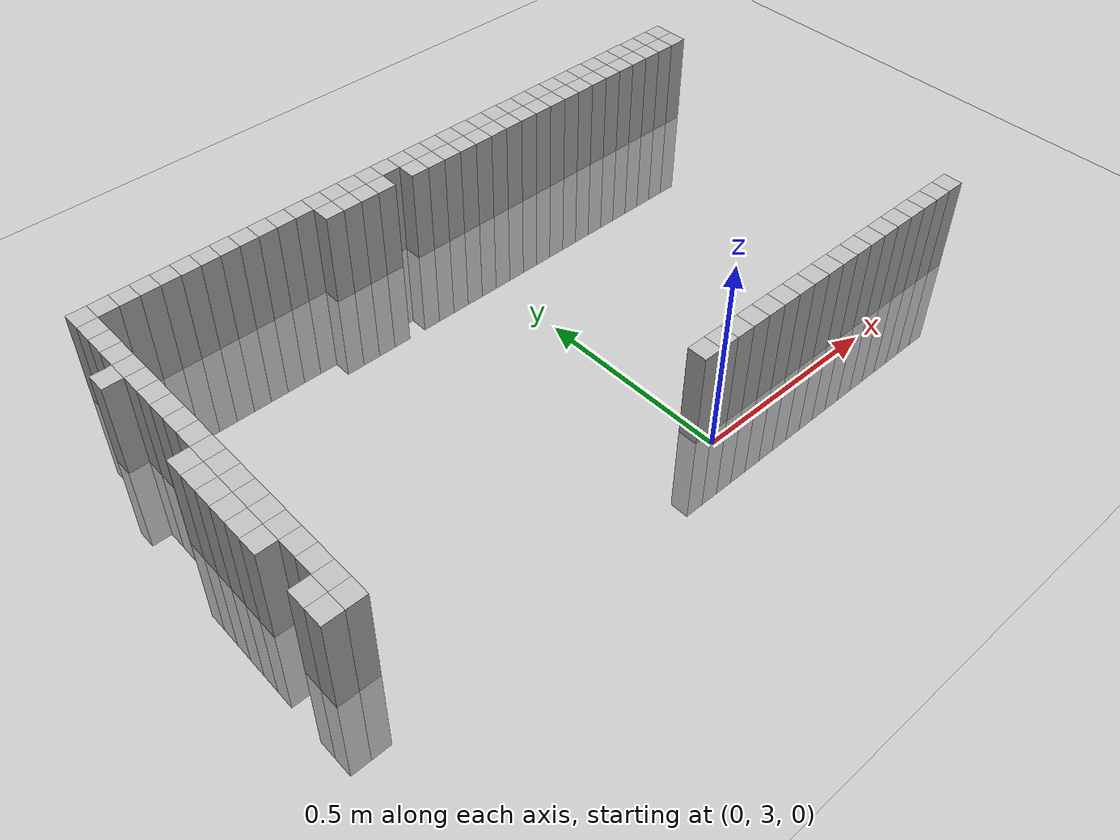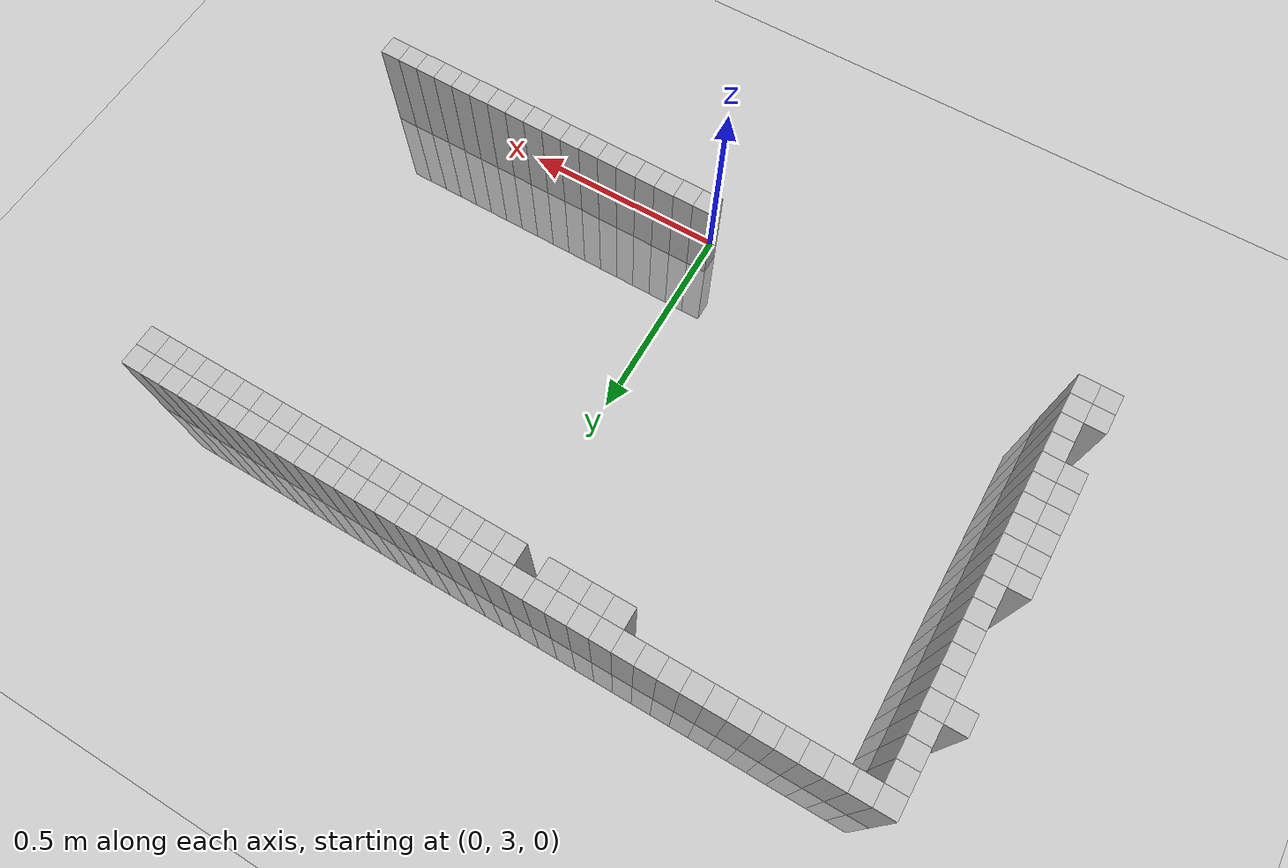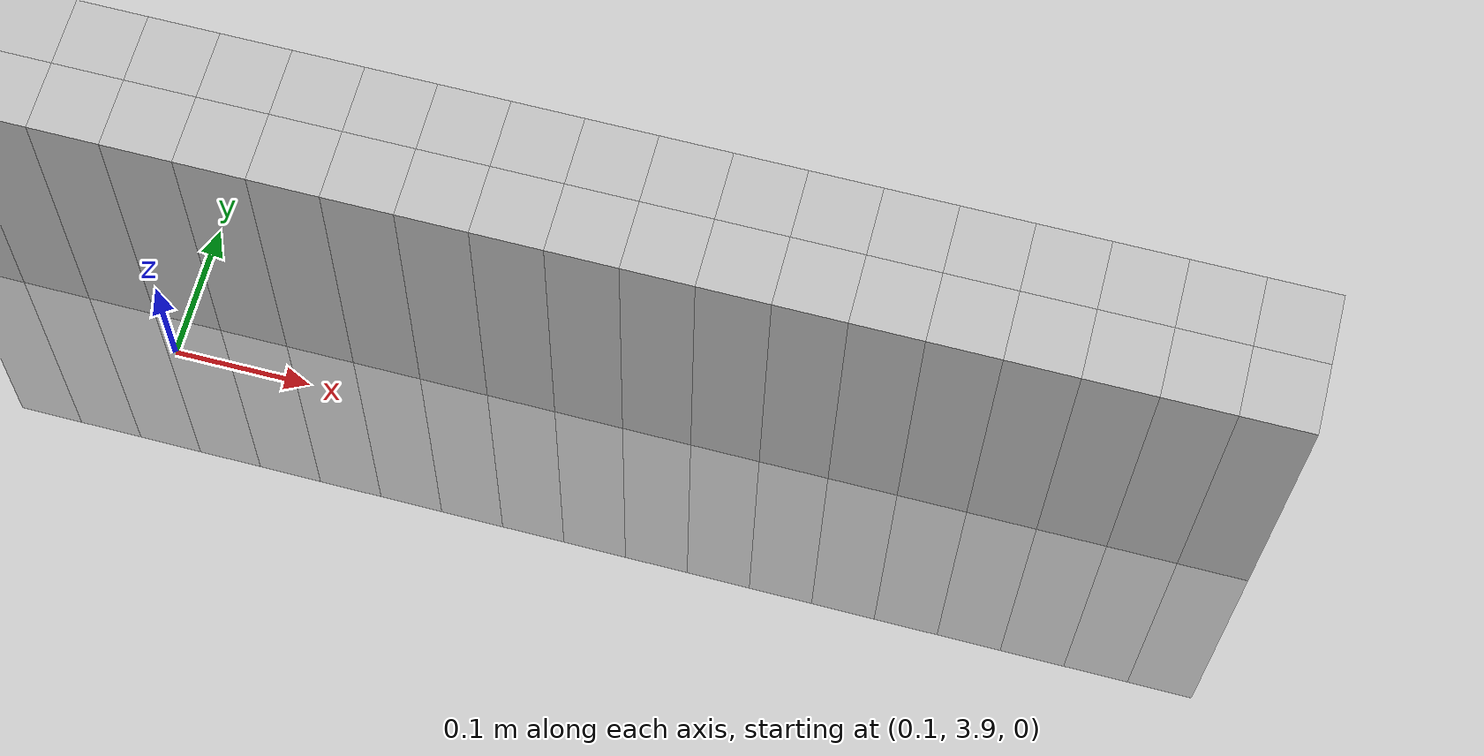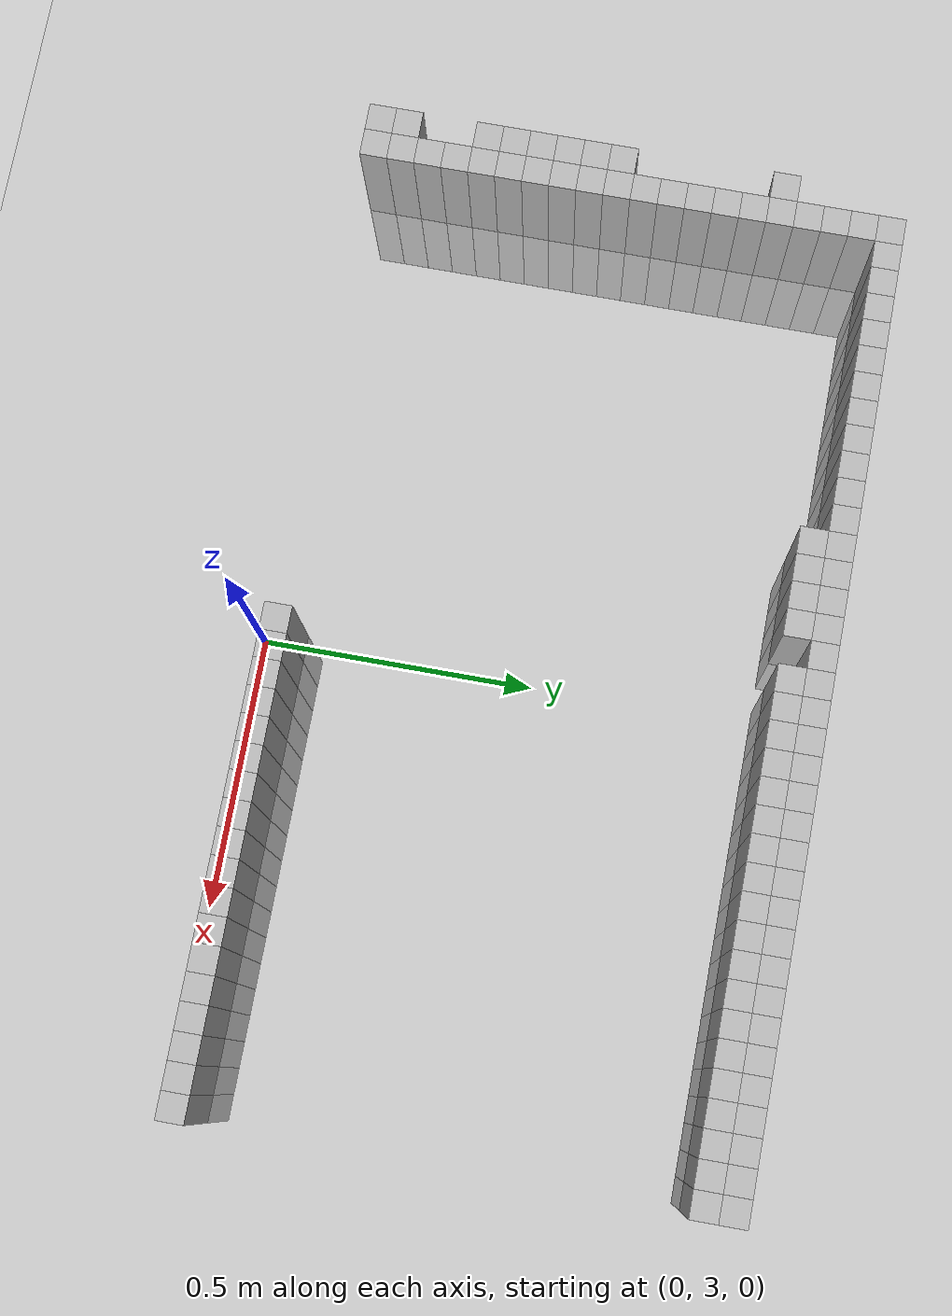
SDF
<sdf version="1.6">
 <world name="my_exploration_world">
  <include><uri>model://ground_plane</uri></include>
  <include><uri>model://sun</uri></include>
  <model name="obstacle_548">
   <pose>-0.9499998651444912 3.0500001944601536 0 0 0 0</pose>
   <link name="link">
    <collision name="collision">
     <geometry><box><size>0.05000000074505806 0.05000000074505806 0.5</size></box></geometry>
    </collision>
    <visual name="visual">
     <geometry><box><size>0.05000000074505806 0.05000000074505806 0.5</size></box></geometry>
    </visual>
   </link>
   <static>true</static>
  </model>
  <model name="obstacle_549">
   <pose>-0.8999998643994331 3.0500001944601536 0 0 0 0</pose>
   <link name="link">
    <collision name="collision">
     <geometry><box><size>0.05000000074505806 0.05000000074505806 0.5</size></box></geometry>
    </collision>
    <visual name="visual">
     <geometry><box><size>0.05000000074505806 0.05000000074505806 0.5</size></box></geometry>
    </visual>
   </link>
   <static>true</static>
  </model>
  <model name="obstacle_550">
   <pose>1.4901161193847656e-07 3.0500001944601536 0 0 0 0</pose>
   <link name="link">
    <collision name="collision">
     <geometry><box><size>0.05000000074505806 0.05000000074505806 0.5</size></box></geometry>
    </collision>
    <visual name="visual">
     <geometry><box><size>0.05000000074505806 0.05000000074505806 0.5</size></box></geometry>
    </visual>
   </link>
   <static>true</static>
  </model>
  <model name="obstacle_551">
   <pose>0.05000014975667 3.0500001944601536 0 0 0 0</pose>
   <link name="link">
    <collision name="collision">
     <geometry><box><size>0.05000000074505806 0.05000000074505806 0.5</size></box></geometry>
    </collision>
    <visual name="visual">
     <geometry><box><size>0.05000000074505806 0.05000000074505806 0.5</size></box></geometry>
    </visual>
   </link>
   <static>true</static>
  </model>
  <model name="obstacle_552">
   <pose>0.10000015050172806 3.0500001944601536 0 0 0 0</pose>
   <link name="link">
    <collision name="collision">
     <geometry><box><size>0.05000000074505806 0.05000000074505806 0.5</size></box></geometry>
    </collision>
    <visual name="visual">
     <geometry><box><size>0.05000000074505806 0.05000000074505806 0.5</size></box></geometry>
    </visual>
   </link>
   <static>true</static>
  </model>
  <model name="obstacle_553">
   <pose>0.15000015124678612 3.0500001944601536 0 0 0 0</pose>
   <link name="link">
    <collision name="collision">
     <geometry><box><size>0.05000000074505806 0.05000000074505806 0.5</size></box></geometry>
    </collision>
    <visual name="visual">
     <geometry><box><size>0.05000000074505806 0.05000000074505806 0.5</size></box></geometry>
    </visual>
   </link>
   <static>true</static>
  </model>
  <model name="obstacle_554">
   <pose>0.20000015199184418 3.0500001944601536 0 0 0 0</pose>
   <link name="link">
    <collision name="collision">
     <geometry><box><size>0.05000000074505806 0.05000000074505806 0.5</size></box></geometry>
    </collision>
    <visual name="visual">
     <geometry><box><size>0.05000000074505806 0.05000000074505806 0.5</size></box></geometry>
    </visual>
   </link>
   <static>true</static>
  </model>
  <model name="obstacle_555">
   <pose>0.25000015273690224 3.0500001944601536 0 0 0 0</pose>
   <link name="link">
    <collision name="collision">
     <geometry><box><size>0.05000000074505806 0.05000000074505806 0.5</size></box></geometry>
    </collision>
    <visual name="visual">
     <geometry><box><size>0.05000000074505806 0.05000000074505806 0.5</size></box></geometry>
    </visual>
   </link>
   <static>true</static>
  </model>
  <model name="obstacle_556">
   <pose>0.3000001534819603 3.0500001944601536 0 0 0 0</pose>
   <link name="link">
    <collision name="collision">
     <geometry><box><size>0.05000000074505806 0.05000000074505806 0.5</size></box></geometry>
    </collision>
    <visual name="visual">
     <geometry><box><size>0.05000000074505806 0.05000000074505806 0.5</size></box></geometry>
    </visual>
   </link>
   <static>true</static>
  </model>
  <model name="obstacle_557">
   <pose>0.35000015422701836 3.0500001944601536 0 0 0 0</pose>
   <link name="link">
    <collision name="collision">
     <geometry><box><size>0.05000000074505806 0.05000000074505806 0.5</size></box></geometry>
    </collision>
    <visual name="visual">
     <geometry><box><size>0.05000000074505806 0.05000000074505806 0.5</size></box></geometry>
    </visual>
   </link>
   <static>true</static>
  </model>
  <model name="obstacle_558">
   <pose>0.4000001549720764 3.0500001944601536 0 0 0 0</pose>
   <link name="link">
    <collision name="collision">
     <geometry><box><size>0.05000000074505806 0.05000000074505806 0.5</size></box></geometry>
    </collision>
    <visual name="visual">
     <geometry><box><size>0.05000000074505806 0.05000000074505806 0.5</size></box></geometry>
    </visual>
   </link>
   <static>true</static>
  </model>
  <model name="obstacle_559">
   <pose>0.4500001557171345 3.0500001944601536 0 0 0 0</pose>
   <link name="link">
    <collision name="collision">
     <geometry><box><size>0.05000000074505806 0.05000000074505806 0.5</size></box></geometry>
    </collision>
    <visual name="visual">
     <geometry><box><size>0.05000000074505806 0.05000000074505806 0.5</size></box></geometry>
    </visual>
   </link>
   <static>true</static>
  </model>
  <model name="obstacle_560">
   <pose>0.5000001564621925 3.0500001944601536 0 0 0 0</pose>
   <link name="link">
    <collision name="collision">
     <geometry><box><size>0.05000000074505806 0.05000000074505806 0.5</size></box></geometry>
    </collision>
    <visual name="visual">
     <geometry><box><size>0.05000000074505806 0.05000000074505806 0.5</size></box></geometry>
    </visual>
   </link>
   <static>true</static>
  </model>
  <model name="obstacle_561">
   <pose>0.5500001572072506 3.0500001944601536 0 0 0 0</pose>
   <link name="link">
    <collision name="collision">
     <geometry><box><size>0.05000000074505806 0.05000000074505806 0.5</size></box></geometry>
    </collision>
    <visual name="visual">
     <geometry><box><size>0.05000000074505806 0.05000000074505806 0.5</size></box></geometry>
    </visual>
   </link>
   <static>true</static>
  </model>
  <model name="obstacle_562">
   <pose>0.6000001579523087 3.0500001944601536 0 0 0 0</pose>
   <link name="link">
    <collision name="collision">
     <geometry><box><size>0.05000000074505806 0.05000000074505806 0.5</size></box></geometry>
    </collision>
    <visual name="visual">
     <geometry><box><size>0.05000000074505806 0.05000000074505806 0.5</size></box></geometry>
    </visual>
   </link>
   <static>true</static>
  </model>
  <model name="obstacle_563">
   <pose>0.6500001586973667 3.0500001944601536 0 0 0 0</pose>
   <link name="link">
    <collision name="collision">
     <geometry><box><size>0.05000000074505806 0.05000000074505806 0.5</size></box></geometry>
    </collision>
    <visual name="visual">
     <geometry><box><size>0.05000000074505806 0.05000000074505806 0.5</size></box></geometry>
    </visual>
   </link>
   <static>true</static>
  </model>
  <model name="obstacle_564">
   <pose>0.7000001594424248 3.0500001944601536 0 0 0 0</pose>
   <link name="link">
    <collision name="collision">
     <geometry><box><size>0.05000000074505806 0.05000000074505806 0.5</size></box></geometry>
    </collision>
    <visual name="visual">
     <geometry><box><size>0.05000000074505806 0.05000000074505806 0.5</size></box></geometry>
    </visual>
   </link>
   <static>true</static>
  </model>
  <model name="obstacle_565">
   <pose>0.7500001601874828 3.0500001944601536 0 0 0 0</pose>
   <link name="link">
    <collision name="collision">
     <geometry><box><size>0.05000000074505806 0.05000000074505806 0.5</size></box></geometry>
    </collision>
    <visual name="visual">
     <geometry><box><size>0.05000000074505806 0.05000000074505806 0.5</size></box></geometry>
    </visual>
   </link>
   <static>true</static>
  </model>
  <model name="obstacle_566">
   <pose>0.8000001609325409 3.0500001944601536 0 0 0 0</pose>
   <link name="link">
    <collision name="collision">
     <geometry><box><size>0.05000000074505806 0.05000000074505806 0.5</size></box></geometry>
    </collision>
    <visual name="visual">
     <geometry><box><size>0.05000000074505806 0.05000000074505806 0.5</size></box></geometry>
    </visual>
   </link>
   <static>true</static>
  </model>
  <model name="obstacle_567">
   <pose>0.850000161677599 3.0500001944601536 0 0 0 0</pose>
   <link name="link">
    <collision name="collision">
     <geometry><box><size>0.05000000074505806 0.05000000074505806 0.5</size></box></geometry>
    </collision>
    <visual name="visual">
     <geometry><box><size>0.05000000074505806 0.05000000074505806 0.5</size></box></geometry>
    </visual>
   </link>
   <static>true</static>
  </model>
  <model name="obstacle_571">
   <pose>-0.9499998651444912 3.1000001952052116 0 0 0 0</pose>
   <link name="link">
    <collision name="collision">
     <geometry><box><size>0.05000000074505806 0.05000000074505806 0.5</size></box></geometry>
    </collision>
    <visual name="visual">
     <geometry><box><size>0.05000000074505806 0.05000000074505806 0.5</size></box></geometry>
    </visual>
   </link>
   <static>true</static>
  </model>
  <model name="obstacle_572">
   <pose>-0.8999998643994331 3.1000001952052116 0 0 0 0</pose>
   <link name="link">
    <collision name="collision">
     <geometry><box><size>0.05000000074505806 0.05000000074505806 0.5</size></box></geometry>
    </collision>
    <visual name="visual">
     <geometry><box><size>0.05000000074505806 0.05000000074505806 0.5</size></box></geometry>
    </visual>
   </link>
   <static>true</static>
  </model>
  <model name="obstacle_574">
   <pose>-0.8999998643994331 3.1500001959502697 0 0 0 0</pose>
   <link name="link">
    <collision name="collision">
     <geometry><box><size>0.05000000074505806 0.05000000074505806 0.5</size></box></geometry>
    </collision>
    <visual name="visual">
     <geometry><box><size>0.05000000074505806 0.05000000074505806 0.5</size></box></geometry>
    </visual>
   </link>
   <static>true</static>
  </model>
  <model name="obstacle_577">
   <pose>-0.8999998643994331 3.2000001966953278 0 0 0 0</pose>
   <link name="link">
    <collision name="collision">
     <geometry><box><size>0.05000000074505806 0.05000000074505806 0.5</size></box></geometry>
    </collision>
    <visual name="visual">
     <geometry><box><size>0.05000000074505806 0.05000000074505806 0.5</size></box></geometry>
    </visual>
   </link>
   <static>true</static>
  </model>
  <model name="obstacle_579">
   <pose>-0.9499998651444912 3.250000197440386 0 0 0 0</pose>
   <link name="link">
    <collision name="collision">
     <geometry><box><size>0.05000000074505806 0.05000000074505806 0.5</size></box></geometry>
    </collision>
    <visual name="visual">
     <geometry><box><size>0.05000000074505806 0.05000000074505806 0.5</size></box></geometry>
    </visual>
   </link>
   <static>true</static>
  </model>
  <model name="obstacle_580">
   <pose>-0.8999998643994331 3.250000197440386 0 0 0 0</pose>
   <link name="link">
    <collision name="collision">
     <geometry><box><size>0.05000000074505806 0.05000000074505806 0.5</size></box></geometry>
    </collision>
    <visual name="visual">
     <geometry><box><size>0.05000000074505806 0.05000000074505806 0.5</size></box></geometry>
    </visual>
   </link>
   <static>true</static>
  </model>
  <model name="obstacle_583">
   <pose>-0.9499998651444912 3.300000198185444 0 0 0 0</pose>
   <link name="link">
    <collision name="collision">
     <geometry><box><size>0.05000000074505806 0.05000000074505806 0.5</size></box></geometry>
    </collision>
    <visual name="visual">
     <geometry><box><size>0.05000000074505806 0.05000000074505806 0.5</size></box></geometry>
    </visual>
   </link>
   <static>true</static>
  </model>
  <model name="obstacle_584">
   <pose>-0.8999998643994331 3.300000198185444 0 0 0 0</pose>
   <link name="link">
    <collision name="collision">
     <geometry><box><size>0.05000000074505806 0.05000000074505806 0.5</size></box></geometry>
    </collision>
    <visual name="visual">
     <geometry><box><size>0.05000000074505806 0.05000000074505806 0.5</size></box></geometry>
    </visual>
   </link>
   <static>true</static>
  </model>
  <model name="obstacle_586">
   <pose>-0.9499998651444912 3.350000198930502 0 0 0 0</pose>
   <link name="link">
    <collision name="collision">
     <geometry><box><size>0.05000000074505806 0.05000000074505806 0.5</size></box></geometry>
    </collision>
    <visual name="visual">
     <geometry><box><size>0.05000000074505806 0.05000000074505806 0.5</size></box></geometry>
    </visual>
   </link>
   <static>true</static>
  </model>
  <model name="obstacle_587">
   <pose>-0.8999998643994331 3.350000198930502 0 0 0 0</pose>
   <link name="link">
    <collision name="collision">
     <geometry><box><size>0.05000000074505806 0.05000000074505806 0.5</size></box></geometry>
    </collision>
    <visual name="visual">
     <geometry><box><size>0.05000000074505806 0.05000000074505806 0.5</size></box></geometry>
    </visual>
   </link>
   <static>true</static>
  </model>
  <model name="obstacle_589">
   <pose>-0.9499998651444912 3.40000019967556 0 0 0 0</pose>
   <link name="link">
    <collision name="collision">
     <geometry><box><size>0.05000000074505806 0.05000000074505806 0.5</size></box></geometry>
    </collision>
    <visual name="visual">
     <geometry><box><size>0.05000000074505806 0.05000000074505806 0.5</size></box></geometry>
    </visual>
   </link>
   <static>true</static>
  </model>
  <model name="obstacle_590">
   <pose>-0.8999998643994331 3.40000019967556 0 0 0 0</pose>
   <link name="link">
    <collision name="collision">
     <geometry><box><size>0.05000000074505806 0.05000000074505806 0.5</size></box></geometry>
    </collision>
    <visual name="visual">
     <geometry><box><size>0.05000000074505806 0.05000000074505806 0.5</size></box></geometry>
    </visual>
   </link>
   <static>true</static>
  </model>
  <model name="obstacle_592">
   <pose>-0.9499998651444912 3.450000200420618 0 0 0 0</pose>
   <link name="link">
    <collision name="collision">
     <geometry><box><size>0.05000000074505806 0.05000000074505806 0.5</size></box></geometry>
    </collision>
    <visual name="visual">
     <geometry><box><size>0.05000000074505806 0.05000000074505806 0.5</size></box></geometry>
    </visual>
   </link>
   <static>true</static>
  </model>
  <model name="obstacle_593">
   <pose>-0.8999998643994331 3.450000200420618 0 0 0 0</pose>
   <link name="link">
    <collision name="collision">
     <geometry><box><size>0.05000000074505806 0.05000000074505806 0.5</size></box></geometry>
    </collision>
    <visual name="visual">
     <geometry><box><size>0.05000000074505806 0.05000000074505806 0.5</size></box></geometry>
    </visual>
   </link>
   <static>true</static>
  </model>
  <model name="obstacle_595">
   <pose>-0.9499998651444912 3.500000201165676 0 0 0 0</pose>
   <link name="link">
    <collision name="collision">
     <geometry><box><size>0.05000000074505806 0.05000000074505806 0.5</size></box></geometry>
    </collision>
    <visual name="visual">
     <geometry><box><size>0.05000000074505806 0.05000000074505806 0.5</size></box></geometry>
    </visual>
   </link>
   <static>true</static>
  </model>
  <model name="obstacle_596">
   <pose>-0.8999998643994331 3.500000201165676 0 0 0 0</pose>
   <link name="link">
    <collision name="collision">
     <geometry><box><size>0.05000000074505806 0.05000000074505806 0.5</size></box></geometry>
    </collision>
    <visual name="visual">
     <geometry><box><size>0.05000000074505806 0.05000000074505806 0.5</size></box></geometry>
    </visual>
   </link>
   <static>true</static>
  </model>
  <model name="obstacle_598">
   <pose>-0.8999998643994331 3.550000201910734 0 0 0 0</pose>
   <link name="link">
    <collision name="collision">
     <geometry><box><size>0.05000000074505806 0.05000000074505806 0.5</size></box></geometry>
    </collision>
    <visual name="visual">
     <geometry><box><size>0.05000000074505806 0.05000000074505806 0.5</size></box></geometry>
    </visual>
   </link>
   <static>true</static>
  </model>
  <model name="obstacle_600">
   <pose>-0.8999998643994331 3.6000002026557922 0 0 0 0</pose>
   <link name="link">
    <collision name="collision">
     <geometry><box><size>0.05000000074505806 0.05000000074505806 0.5</size></box></geometry>
    </collision>
    <visual name="visual">
     <geometry><box><size>0.05000000074505806 0.05000000074505806 0.5</size></box></geometry>
    </visual>
   </link>
   <static>true</static>
  </model>
  <model name="obstacle_602">
   <pose>-0.8999998643994331 3.6500002034008503 0 0 0 0</pose>
   <link name="link">
    <collision name="collision">
     <geometry><box><size>0.05000000074505806 0.05000000074505806 0.5</size></box></geometry>
    </collision>
    <visual name="visual">
     <geometry><box><size>0.05000000074505806 0.05000000074505806 0.5</size></box></geometry>
    </visual>
   </link>
   <static>true</static>
  </model>
  <model name="obstacle_604">
   <pose>-0.8999998643994331 3.7000002041459084 0 0 0 0</pose>
   <link name="link">
    <collision name="collision">
     <geometry><box><size>0.05000000074505806 0.05000000074505806 0.5</size></box></geometry>
    </collision>
    <visual name="visual">
     <geometry><box><size>0.05000000074505806 0.05000000074505806 0.5</size></box></geometry>
    </visual>
   </link>
   <static>true</static>
  </model>
  <model name="obstacle_606">
   <pose>-0.8999998643994331 3.7500002048909664 0 0 0 0</pose>
   <link name="link">
    <collision name="collision">
     <geometry><box><size>0.05000000074505806 0.05000000074505806 0.5</size></box></geometry>
    </collision>
    <visual name="visual">
     <geometry><box><size>0.05000000074505806 0.05000000074505806 0.5</size></box></geometry>
    </visual>
   </link>
   <static>true</static>
  </model>
  <model name="obstacle_609">
   <pose>-0.9499998651444912 3.8000002056360245 0 0 0 0</pose>
   <link name="link">
    <collision name="collision">
     <geometry><box><size>0.05000000074505806 0.05000000074505806 0.5</size></box></geometry>
    </collision>
    <visual name="visual">
     <geometry><box><size>0.05000000074505806 0.05000000074505806 0.5</size></box></geometry>
    </visual>
   </link>
   <static>true</static>
  </model>
  <model name="obstacle_610">
   <pose>-0.8999998643994331 3.8000002056360245 0 0 0 0</pose>
   <link name="link">
    <collision name="collision">
     <geometry><box><size>0.05000000074505806 0.05000000074505806 0.5</size></box></geometry>
    </collision>
    <visual name="visual">
     <geometry><box><size>0.05000000074505806 0.05000000074505806 0.5</size></box></geometry>
    </visual>
   </link>
   <static>true</static>
  </model>
  <model name="obstacle_614">
   <pose>-0.8999998643994331 3.8500002063810825 0 0 0 0</pose>
   <link name="link">
    <collision name="collision">
     <geometry><box><size>0.05000000074505806 0.05000000074505806 0.5</size></box></geometry>
    </collision>
    <visual name="visual">
     <geometry><box><size>0.05000000074505806 0.05000000074505806 0.5</size></box></geometry>
    </visual>
   </link>
   <static>true</static>
  </model>
  <model name="obstacle_617">
   <pose>-0.8999998643994331 3.9000002071261406 0 0 0 0</pose>
   <link name="link">
    <collision name="collision">
     <geometry><box><size>0.05000000074505806 0.05000000074505806 0.5</size></box></geometry>
    </collision>
    <visual name="visual">
     <geometry><box><size>0.05000000074505806 0.05000000074505806 0.5</size></box></geometry>
    </visual>
   </link>
   <static>true</static>
  </model>
  <model name="obstacle_620">
   <pose>-0.8999998643994331 3.9500002078711987 0 0 0 0</pose>
   <link name="link">
    <collision name="collision">
     <geometry><box><size>0.05000000074505806 0.05000000074505806 0.5</size></box></geometry>
    </collision>
    <visual name="visual">
     <geometry><box><size>0.05000000074505806 0.05000000074505806 0.5</size></box></geometry>
    </visual>
   </link>
   <static>true</static>
  </model>
  <model name="obstacle_621">
   <pose>-0.2999998554587364 3.9500002078711987 0 0 0 0</pose>
   <link name="link">
    <collision name="collision">
     <geometry><box><size>0.05000000074505806 0.05000000074505806 0.5</size></box></geometry>
    </collision>
    <visual name="visual">
     <geometry><box><size>0.05000000074505806 0.05000000074505806 0.5</size></box></geometry>
    </visual>
   </link>
   <static>true</static>
  </model>
  <model name="obstacle_622">
   <pose>-0.24999985471367836 3.9500002078711987 0 0 0 0</pose>
   <link name="link">
    <collision name="collision">
     <geometry><box><size>0.05000000074505806 0.05000000074505806 0.5</size></box></geometry>
    </collision>
    <visual name="visual">
     <geometry><box><size>0.05000000074505806 0.05000000074505806 0.5</size></box></geometry>
    </visual>
   </link>
   <static>true</static>
  </model>
  <model name="obstacle_623">
   <pose>-0.1999998539686203 3.9500002078711987 0 0 0 0</pose>
   <link name="link">
    <collision name="collision">
     <geometry><box><size>0.05000000074505806 0.05000000074505806 0.5</size></box></geometry>
    </collision>
    <visual name="visual">
     <geometry><box><size>0.05000000074505806 0.05000000074505806 0.5</size></box></geometry>
    </visual>
   </link>
   <static>true</static>
  </model>
  <model name="obstacle_624">
   <pose>-0.14999985322356224 3.9500002078711987 0 0 0 0</pose>
   <link name="link">
    <collision name="collision">
     <geometry><box><size>0.05000000074505806 0.05000000074505806 0.5</size></box></geometry>
    </collision>
    <visual name="visual">
     <geometry><box><size>0.05000000074505806 0.05000000074505806 0.5</size></box></geometry>
    </visual>
   </link>
   <static>true</static>
  </model>
  <model name="obstacle_625">
   <pose>-0.04999985173344612 3.9500002078711987 0 0 0 0</pose>
   <link name="link">
    <collision name="collision">
     <geometry><box><size>0.05000000074505806 0.05000000074505806 0.5</size></box></geometry>
    </collision>
    <visual name="visual">
     <geometry><box><size>0.05000000074505806 0.05000000074505806 0.5</size></box></geometry>
    </visual>
   </link>
   <static>true</static>
  </model>
  <model name="obstacle_626">
   <pose>1.4901161193847656e-07 3.9500002078711987 0 0 0 0</pose>
   <link name="link">
    <collision name="collision">
     <geometry><box><size>0.05000000074505806 0.05000000074505806 0.5</size></box></geometry>
    </collision>
    <visual name="visual">
     <geometry><box><size>0.05000000074505806 0.05000000074505806 0.5</size></box></geometry>
    </visual>
   </link>
   <static>true</static>
  </model>
  <model name="obstacle_627">
   <pose>0.05000014975667 3.9500002078711987 0 0 0 0</pose>
   <link name="link">
    <collision name="collision">
     <geometry><box><size>0.05000000074505806 0.05000000074505806 0.5</size></box></geometry>
    </collision>
    <visual name="visual">
     <geometry><box><size>0.05000000074505806 0.05000000074505806 0.5</size></box></geometry>
    </visual>
   </link>
   <static>true</static>
  </model>
  <model name="obstacle_628">
   <pose>0.10000015050172806 3.9500002078711987 0 0 0 0</pose>
   <link name="link">
    <collision name="collision">
     <geometry><box><size>0.05000000074505806 0.05000000074505806 0.5</size></box></geometry>
    </collision>
    <visual name="visual">
     <geometry><box><size>0.05000000074505806 0.05000000074505806 0.5</size></box></geometry>
    </visual>
   </link>
   <static>true</static>
  </model>
  <model name="obstacle_629">
   <pose>0.15000015124678612 3.9500002078711987 0 0 0 0</pose>
   <link name="link">
    <collision name="collision">
     <geometry><box><size>0.05000000074505806 0.05000000074505806 0.5</size></box></geometry>
    </collision>
    <visual name="visual">
     <geometry><box><size>0.05000000074505806 0.05000000074505806 0.5</size></box></geometry>
    </visual>
   </link>
   <static>true</static>
  </model>
  <model name="obstacle_630">
   <pose>0.20000015199184418 3.9500002078711987 0 0 0 0</pose>
   <link name="link">
    <collision name="collision">
     <geometry><box><size>0.05000000074505806 0.05000000074505806 0.5</size></box></geometry>
    </collision>
    <visual name="visual">
     <geometry><box><size>0.05000000074505806 0.05000000074505806 0.5</size></box></geometry>
    </visual>
   </link>
   <static>true</static>
  </model>
  <model name="obstacle_631">
   <pose>0.25000015273690224 3.9500002078711987 0 0 0 0</pose>
   <link name="link">
    <collision name="collision">
     <geometry><box><size>0.05000000074505806 0.05000000074505806 0.5</size></box></geometry>
    </collision>
    <visual name="visual">
     <geometry><box><size>0.05000000074505806 0.05000000074505806 0.5</size></box></geometry>
    </visual>
   </link>
   <static>true</static>
  </model>
  <model name="obstacle_632">
   <pose>0.3000001534819603 3.9500002078711987 0 0 0 0</pose>
   <link name="link">
    <collision name="collision">
     <geometry><box><size>0.05000000074505806 0.05000000074505806 0.5</size></box></geometry>
    </collision>
    <visual name="visual">
     <geometry><box><size>0.05000000074505806 0.05000000074505806 0.5</size></box></geometry>
    </visual>
   </link>
   <static>true</static>
  </model>
  <model name="obstacle_633">
   <pose>0.35000015422701836 3.9500002078711987 0 0 0 0</pose>
   <link name="link">
    <collision name="collision">
     <geometry><box><size>0.05000000074505806 0.05000000074505806 0.5</size></box></geometry>
    </collision>
    <visual name="visual">
     <geometry><box><size>0.05000000074505806 0.05000000074505806 0.5</size></box></geometry>
    </visual>
   </link>
   <static>true</static>
  </model>
  <model name="obstacle_634">
   <pose>0.4000001549720764 3.9500002078711987 0 0 0 0</pose>
   <link name="link">
    <collision name="collision">
     <geometry><box><size>0.05000000074505806 0.05000000074505806 0.5</size></box></geometry>
    </collision>
    <visual name="visual">
     <geometry><box><size>0.05000000074505806 0.05000000074505806 0.5</size></box></geometry>
    </visual>
   </link>
   <static>true</static>
  </model>
  <model name="obstacle_635">
   <pose>0.4500001557171345 3.9500002078711987 0 0 0 0</pose>
   <link name="link">
    <collision name="collision">
     <geometry><box><size>0.05000000074505806 0.05000000074505806 0.5</size></box></geometry>
    </collision>
    <visual name="visual">
     <geometry><box><size>0.05000000074505806 0.05000000074505806 0.5</size></box></geometry>
    </visual>
   </link>
   <static>true</static>
  </model>
  <model name="obstacle_636">
   <pose>0.5000001564621925 3.9500002078711987 0 0 0 0</pose>
   <link name="link">
    <collision name="collision">
     <geometry><box><size>0.05000000074505806 0.05000000074505806 0.5</size></box></geometry>
    </collision>
    <visual name="visual">
     <geometry><box><size>0.05000000074505806 0.05000000074505806 0.5</size></box></geometry>
    </visual>
   </link>
   <static>true</static>
  </model>
  <model name="obstacle_637">
   <pose>0.5500001572072506 3.9500002078711987 0 0 0 0</pose>
   <link name="link">
    <collision name="collision">
     <geometry><box><size>0.05000000074505806 0.05000000074505806 0.5</size></box></geometry>
    </collision>
    <visual name="visual">
     <geometry><box><size>0.05000000074505806 0.05000000074505806 0.5</size></box></geometry>
    </visual>
   </link>
   <static>true</static>
  </model>
  <model name="obstacle_638">
   <pose>0.6000001579523087 3.9500002078711987 0 0 0 0</pose>
   <link name="link">
    <collision name="collision">
     <geometry><box><size>0.05000000074505806 0.05000000074505806 0.5</size></box></geometry>
    </collision>
    <visual name="visual">
     <geometry><box><size>0.05000000074505806 0.05000000074505806 0.5</size></box></geometry>
    </visual>
   </link>
   <static>true</static>
  </model>
  <model name="obstacle_639">
   <pose>0.6500001586973667 3.9500002078711987 0 0 0 0</pose>
   <link name="link">
    <collision name="collision">
     <geometry><box><size>0.05000000074505806 0.05000000074505806 0.5</size></box></geometry>
    </collision>
    <visual name="visual">
     <geometry><box><size>0.05000000074505806 0.05000000074505806 0.5</size></box></geometry>
    </visual>
   </link>
   <static>true</static>
  </model>
  <model name="obstacle_640">
   <pose>0.7000001594424248 3.9500002078711987 0 0 0 0</pose>
   <link name="link">
    <collision name="collision">
     <geometry><box><size>0.05000000074505806 0.05000000074505806 0.5</size></box></geometry>
    </collision>
    <visual name="visual">
     <geometry><box><size>0.05000000074505806 0.05000000074505806 0.5</size></box></geometry>
    </visual>
   </link>
   <static>true</static>
  </model>
  <model name="obstacle_641">
   <pose>0.7500001601874828 3.9500002078711987 0 0 0 0</pose>
   <link name="link">
    <collision name="collision">
     <geometry><box><size>0.05000000074505806 0.05000000074505806 0.5</size></box></geometry>
    </collision>
    <visual name="visual">
     <geometry><box><size>0.05000000074505806 0.05000000074505806 0.5</size></box></geometry>
    </visual>
   </link>
   <static>true</static>
  </model>
  <model name="obstacle_642">
   <pose>0.8000001609325409 3.9500002078711987 0 0 0 0</pose>
   <link name="link">
    <collision name="collision">
     <geometry><box><size>0.05000000074505806 0.05000000074505806 0.5</size></box></geometry>
    </collision>
    <visual name="visual">
     <geometry><box><size>0.05000000074505806 0.05000000074505806 0.5</size></box></geometry>
    </visual>
   </link>
   <static>true</static>
  </model>
  <model name="obstacle_643">
   <pose>0.850000161677599 3.9500002078711987 0 0 0 0</pose>
   <link name="link">
    <collision name="collision">
     <geometry><box><size>0.05000000074505806 0.05000000074505806 0.5</size></box></geometry>
    </collision>
    <visual name="visual">
     <geometry><box><size>0.05000000074505806 0.05000000074505806 0.5</size></box></geometry>
    </visual>
   </link>
   <static>true</static>
  </model>
  <model name="obstacle_651">
   <pose>-0.8999998643994331 4.000000208616257 0 0 0 0</pose>
   <link name="link">
    <collision name="collision">
     <geometry><box><size>0.05000000074505806 0.05000000074505806 0.5</size></box></geometry>
    </collision>
    <visual name="visual">
     <geometry><box><size>0.05000000074505806 0.05000000074505806 0.5</size></box></geometry>
    </visual>
   </link>
   <static>true</static>
  </model>
  <model name="obstacle_652">
   <pose>-0.8499998636543751 4.000000208616257 0 0 0 0</pose>
   <link name="link">
    <collision name="collision">
     <geometry><box><size>0.05000000074505806 0.05000000074505806 0.5</size></box></geometry>
    </collision>
    <visual name="visual">
     <geometry><box><size>0.05000000074505806 0.05000000074505806 0.5</size></box></geometry>
    </visual>
   </link>
   <static>true</static>
  </model>
  <model name="obstacle_653">
   <pose>-0.799999862909317 4.000000208616257 0 0 0 0</pose>
   <link name="link">
    <collision name="collision">
     <geometry><box><size>0.05000000074505806 0.05000000074505806 0.5</size></box></geometry>
    </collision>
    <visual name="visual">
     <geometry><box><size>0.05000000074505806 0.05000000074505806 0.5</size></box></geometry>
    </visual>
   </link>
   <static>true</static>
  </model>
  <model name="obstacle_654">
   <pose>-0.749999862164259 4.000000208616257 0 0 0 0</pose>
   <link name="link">
    <collision name="collision">
     <geometry><box><size>0.05000000074505806 0.05000000074505806 0.5</size></box></geometry>
    </collision>
    <visual name="visual">
     <geometry><box><size>0.05000000074505806 0.05000000074505806 0.5</size></box></geometry>
    </visual>
   </link>
   <static>true</static>
  </model>
  <model name="obstacle_655">
   <pose>-0.6999998614192009 4.000000208616257 0 0 0 0</pose>
   <link name="link">
    <collision name="collision">
     <geometry><box><size>0.05000000074505806 0.05000000074505806 0.5</size></box></geometry>
    </collision>
    <visual name="visual">
     <geometry><box><size>0.05000000074505806 0.05000000074505806 0.5</size></box></geometry>
    </visual>
   </link>
   <static>true</static>
  </model>
  <model name="obstacle_656">
   <pose>-0.6499998606741428 4.000000208616257 0 0 0 0</pose>
   <link name="link">
    <collision name="collision">
     <geometry><box><size>0.05000000074505806 0.05000000074505806 0.5</size></box></geometry>
    </collision>
    <visual name="visual">
     <geometry><box><size>0.05000000074505806 0.05000000074505806 0.5</size></box></geometry>
    </visual>
   </link>
   <static>true</static>
  </model>
  <model name="obstacle_657">
   <pose>-0.5999998599290848 4.000000208616257 0 0 0 0</pose>
   <link name="link">
    <collision name="collision">
     <geometry><box><size>0.05000000074505806 0.05000000074505806 0.5</size></box></geometry>
    </collision>
    <visual name="visual">
     <geometry><box><size>0.05000000074505806 0.05000000074505806 0.5</size></box></geometry>
    </visual>
   </link>
   <static>true</static>
  </model>
  <model name="obstacle_658">
   <pose>-0.5499998591840267 4.000000208616257 0 0 0 0</pose>
   <link name="link">
    <collision name="collision">
     <geometry><box><size>0.05000000074505806 0.05000000074505806 0.5</size></box></geometry>
    </collision>
    <visual name="visual">
     <geometry><box><size>0.05000000074505806 0.05000000074505806 0.5</size></box></geometry>
    </visual>
   </link>
   <static>true</static>
  </model>
  <model name="obstacle_659">
   <pose>-0.49999985843896866 4.000000208616257 0 0 0 0</pose>
   <link name="link">
    <collision name="collision">
     <geometry><box><size>0.05000000074505806 0.05000000074505806 0.5</size></box></geometry>
    </collision>
    <visual name="visual">
     <geometry><box><size>0.05000000074505806 0.05000000074505806 0.5</size></box></geometry>
    </visual>
   </link>
   <static>true</static>
  </model>
  <model name="obstacle_660">
   <pose>-0.4499998576939106 4.000000208616257 0 0 0 0</pose>
   <link name="link">
    <collision name="collision">
     <geometry><box><size>0.05000000074505806 0.05000000074505806 0.5</size></box></geometry>
    </collision>
    <visual name="visual">
     <geometry><box><size>0.05000000074505806 0.05000000074505806 0.5</size></box></geometry>
    </visual>
   </link>
   <static>true</static>
  </model>
  <model name="obstacle_661">
   <pose>-0.39999985694885254 4.000000208616257 0 0 0 0</pose>
   <link name="link">
    <collision name="collision">
     <geometry><box><size>0.05000000074505806 0.05000000074505806 0.5</size></box></geometry>
    </collision>
    <visual name="visual">
     <geometry><box><size>0.05000000074505806 0.05000000074505806 0.5</size></box></geometry>
    </visual>
   </link>
   <static>true</static>
  </model>
  <model name="obstacle_662">
   <pose>-0.3499998562037945 4.000000208616257 0 0 0 0</pose>
   <link name="link">
    <collision name="collision">
     <geometry><box><size>0.05000000074505806 0.05000000074505806 0.5</size></box></geometry>
    </collision>
    <visual name="visual">
     <geometry><box><size>0.05000000074505806 0.05000000074505806 0.5</size></box></geometry>
    </visual>
   </link>
   <static>true</static>
  </model>
  <model name="obstacle_663">
   <pose>-0.2999998554587364 4.000000208616257 0 0 0 0</pose>
   <link name="link">
    <collision name="collision">
     <geometry><box><size>0.05000000074505806 0.05000000074505806 0.5</size></box></geometry>
    </collision>
    <visual name="visual">
     <geometry><box><size>0.05000000074505806 0.05000000074505806 0.5</size></box></geometry>
    </visual>
   </link>
   <static>true</static>
  </model>
  <model name="obstacle_664">
   <pose>-0.24999985471367836 4.000000208616257 0 0 0 0</pose>
   <link name="link">
    <collision name="collision">
     <geometry><box><size>0.05000000074505806 0.05000000074505806 0.5</size></box></geometry>
    </collision>
    <visual name="visual">
     <geometry><box><size>0.05000000074505806 0.05000000074505806 0.5</size></box></geometry>
    </visual>
   </link>
   <static>true</static>
  </model>
  <model name="obstacle_665">
   <pose>-0.1999998539686203 4.000000208616257 0 0 0 0</pose>
   <link name="link">
    <collision name="collision">
     <geometry><box><size>0.05000000074505806 0.05000000074505806 0.5</size></box></geometry>
    </collision>
    <visual name="visual">
     <geometry><box><size>0.05000000074505806 0.05000000074505806 0.5</size></box></geometry>
    </visual>
   </link>
   <static>true</static>
  </model>
  <model name="obstacle_666">
   <pose>-0.14999985322356224 4.000000208616257 0 0 0 0</pose>
   <link name="link">
    <collision name="collision">
     <geometry><box><size>0.05000000074505806 0.05000000074505806 0.5</size></box></geometry>
    </collision>
    <visual name="visual">
     <geometry><box><size>0.05000000074505806 0.05000000074505806 0.5</size></box></geometry>
    </visual>
   </link>
   <static>true</static>
  </model>
  <model name="obstacle_667">
   <pose>-0.09999985247850418 4.000000208616257 0 0 0 0</pose>
   <link name="link">
    <collision name="collision">
     <geometry><box><size>0.05000000074505806 0.05000000074505806 0.5</size></box></geometry>
    </collision>
    <visual name="visual">
     <geometry><box><size>0.05000000074505806 0.05000000074505806 0.5</size></box></geometry>
    </visual>
   </link>
   <static>true</static>
  </model>
  <model name="obstacle_668">
   <pose>-0.04999985173344612 4.000000208616257 0 0 0 0</pose>
   <link name="link">
    <collision name="collision">
     <geometry><box><size>0.05000000074505806 0.05000000074505806 0.5</size></box></geometry>
    </collision>
    <visual name="visual">
     <geometry><box><size>0.05000000074505806 0.05000000074505806 0.5</size></box></geometry>
    </visual>
   </link>
   <static>true</static>
  </model>
  <model name="obstacle_669">
   <pose>1.4901161193847656e-07 4.000000208616257 0 0 0 0</pose>
   <link name="link">
    <collision name="collision">
     <geometry><box><size>0.05000000074505806 0.05000000074505806 0.5</size></box></geometry>
    </collision>
    <visual name="visual">
     <geometry><box><size>0.05000000074505806 0.05000000074505806 0.5</size></box></geometry>
    </visual>
   </link>
   <static>true</static>
  </model>
  <model name="obstacle_670">
   <pose>0.05000014975667 4.000000208616257 0 0 0 0</pose>
   <link name="link">
    <collision name="collision">
     <geometry><box><size>0.05000000074505806 0.05000000074505806 0.5</size></box></geometry>
    </collision>
    <visual name="visual">
     <geometry><box><size>0.05000000074505806 0.05000000074505806 0.5</size></box></geometry>
    </visual>
   </link>
   <static>true</static>
  </model>
  <model name="obstacle_671">
   <pose>0.10000015050172806 4.000000208616257 0 0 0 0</pose>
   <link name="link">
    <collision name="collision">
     <geometry><box><size>0.05000000074505806 0.05000000074505806 0.5</size></box></geometry>
    </collision>
    <visual name="visual">
     <geometry><box><size>0.05000000074505806 0.05000000074505806 0.5</size></box></geometry>
    </visual>
   </link>
   <static>true</static>
  </model>
  <model name="obstacle_672">
   <pose>0.15000015124678612 4.000000208616257 0 0 0 0</pose>
   <link name="link">
    <collision name="collision">
     <geometry><box><size>0.05000000074505806 0.05000000074505806 0.5</size></box></geometry>
    </collision>
    <visual name="visual">
     <geometry><box><size>0.05000000074505806 0.05000000074505806 0.5</size></box></geometry>
    </visual>
   </link>
   <static>true</static>
  </model>
  <model name="obstacle_673">
   <pose>0.20000015199184418 4.000000208616257 0 0 0 0</pose>
   <link name="link">
    <collision name="collision">
     <geometry><box><size>0.05000000074505806 0.05000000074505806 0.5</size></box></geometry>
    </collision>
    <visual name="visual">
     <geometry><box><size>0.05000000074505806 0.05000000074505806 0.5</size></box></geometry>
    </visual>
   </link>
   <static>true</static>
  </model>
  <model name="obstacle_674">
   <pose>0.25000015273690224 4.000000208616257 0 0 0 0</pose>
   <link name="link">
    <collision name="collision">
     <geometry><box><size>0.05000000074505806 0.05000000074505806 0.5</size></box></geometry>
    </collision>
    <visual name="visual">
     <geometry><box><size>0.05000000074505806 0.05000000074505806 0.5</size></box></geometry>
    </visual>
   </link>
   <static>true</static>
  </model>
  <model name="obstacle_675">
   <pose>0.3000001534819603 4.000000208616257 0 0 0 0</pose>
   <link name="link">
    <collision name="collision">
     <geometry><box><size>0.05000000074505806 0.05000000074505806 0.5</size></box></geometry>
    </collision>
    <visual name="visual">
     <geometry><box><size>0.05000000074505806 0.05000000074505806 0.5</size></box></geometry>
    </visual>
   </link>
   <static>true</static>
  </model>
  <model name="obstacle_676">
   <pose>0.35000015422701836 4.000000208616257 0 0 0 0</pose>
   <link name="link">
    <collision name="collision">
     <geometry><box><size>0.05000000074505806 0.05000000074505806 0.5</size></box></geometry>
    </collision>
    <visual name="visual">
     <geometry><box><size>0.05000000074505806 0.05000000074505806 0.5</size></box></geometry>
    </visual>
   </link>
   <static>true</static>
  </model>
  <model name="obstacle_677">
   <pose>0.4000001549720764 4.000000208616257 0 0 0 0</pose>
   <link name="link">
    <collision name="collision">
     <geometry><box><size>0.05000000074505806 0.05000000074505806 0.5</size></box></geometry>
    </collision>
    <visual name="visual">
     <geometry><box><size>0.05000000074505806 0.05000000074505806 0.5</size></box></geometry>
    </visual>
   </link>
   <static>true</static>
  </model>
  <model name="obstacle_678">
   <pose>0.4500001557171345 4.000000208616257 0 0 0 0</pose>
   <link name="link">
    <collision name="collision">
     <geometry><box><size>0.05000000074505806 0.05000000074505806 0.5</size></box></geometry>
    </collision>
    <visual name="visual">
     <geometry><box><size>0.05000000074505806 0.05000000074505806 0.5</size></box></geometry>
    </visual>
   </link>
   <static>true</static>
  </model>
  <model name="obstacle_679">
   <pose>0.5000001564621925 4.000000208616257 0 0 0 0</pose>
   <link name="link">
    <collision name="collision">
     <geometry><box><size>0.05000000074505806 0.05000000074505806 0.5</size></box></geometry>
    </collision>
    <visual name="visual">
     <geometry><box><size>0.05000000074505806 0.05000000074505806 0.5</size></box></geometry>
    </visual>
   </link>
   <static>true</static>
  </model>
  <model name="obstacle_680">
   <pose>0.5500001572072506 4.000000208616257 0 0 0 0</pose>
   <link name="link">
    <collision name="collision">
     <geometry><box><size>0.05000000074505806 0.05000000074505806 0.5</size></box></geometry>
    </collision>
    <visual name="visual">
     <geometry><box><size>0.05000000074505806 0.05000000074505806 0.5</size></box></geometry>
    </visual>
   </link>
   <static>true</static>
  </model>
  <model name="obstacle_681">
   <pose>0.6000001579523087 4.000000208616257 0 0 0 0</pose>
   <link name="link">
    <collision name="collision">
     <geometry><box><size>0.05000000074505806 0.05000000074505806 0.5</size></box></geometry>
    </collision>
    <visual name="visual">
     <geometry><box><size>0.05000000074505806 0.05000000074505806 0.5</size></box></geometry>
    </visual>
   </link>
   <static>true</static>
  </model>
  <model name="obstacle_682">
   <pose>0.6500001586973667 4.000000208616257 0 0 0 0</pose>
   <link name="link">
    <collision name="collision">
     <geometry><box><size>0.05000000074505806 0.05000000074505806 0.5</size></box></geometry>
    </collision>
    <visual name="visual">
     <geometry><box><size>0.05000000074505806 0.05000000074505806 0.5</size></box></geometry>
    </visual>
   </link>
   <static>true</static>
  </model>
  <model name="obstacle_683">
   <pose>0.7000001594424248 4.000000208616257 0 0 0 0</pose>
   <link name="link">
    <collision name="collision">
     <geometry><box><size>0.05000000074505806 0.05000000074505806 0.5</size></box></geometry>
    </collision>
    <visual name="visual">
     <geometry><box><size>0.05000000074505806 0.05000000074505806 0.5</size></box></geometry>
    </visual>
   </link>
   <static>true</static>
  </model>
  <model name="obstacle_684">
   <pose>0.7500001601874828 4.000000208616257 0 0 0 0</pose>
   <link name="link">
    <collision name="collision">
     <geometry><box><size>0.05000000074505806 0.05000000074505806 0.5</size></box></geometry>
    </collision>
    <visual name="visual">
     <geometry><box><size>0.05000000074505806 0.05000000074505806 0.5</size></box></geometry>
    </visual>
   </link>
   <static>true</static>
  </model>
  <model name="obstacle_685">
   <pose>0.8000001609325409 4.000000208616257 0 0 0 0</pose>
   <link name="link">
    <collision name="collision">
     <geometry><box><size>0.05000000074505806 0.05000000074505806 0.5</size></box></geometry>
    </collision>
    <visual name="visual">
     <geometry><box><size>0.05000000074505806 0.05000000074505806 0.5</size></box></geometry>
    </visual>
   </link>
   <static>true</static>
  </model>
  <model name="obstacle_686">
   <pose>0.850000161677599 4.000000208616257 0 0 0 0</pose>
   <link name="link">
    <collision name="collision">
     <geometry><box><size>0.05000000074505806 0.05000000074505806 0.5</size></box></geometry>
    </collision>
    <visual name="visual">
     <geometry><box><size>0.05000000074505806 0.05000000074505806 0.5</size></box></geometry>
    </visual>
   </link>
   <static>true</static>
  </model>
 </world>
</sdf>
